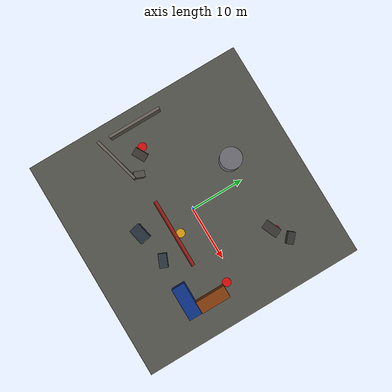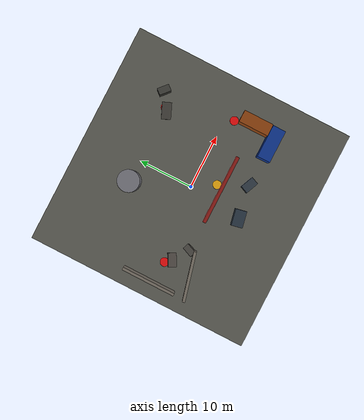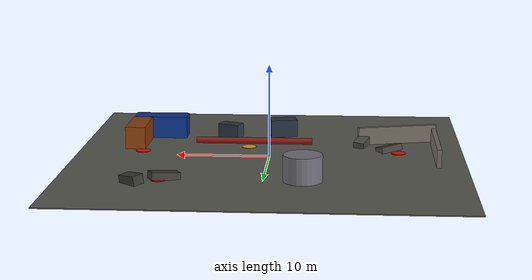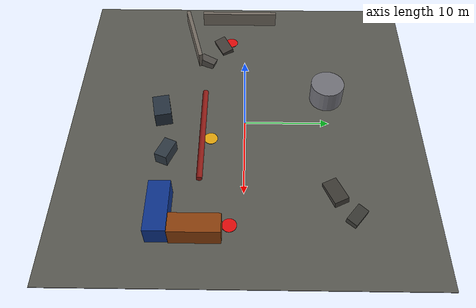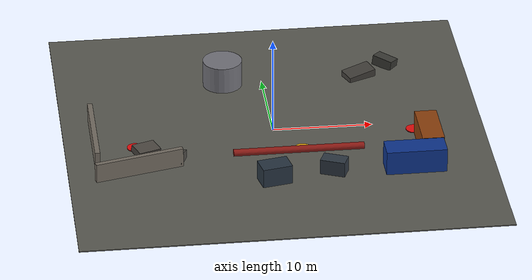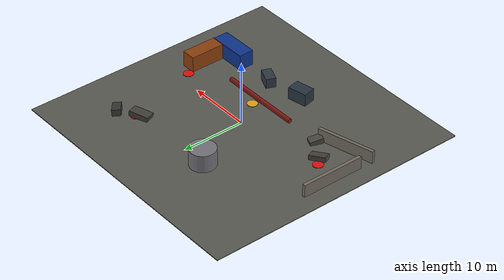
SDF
<?xml version="1.0" ?>
<sdf version="1.9">
  <world name="disaster_industrial">

    <physics name="1ms" type="ignored">
      <max_step_size>0.001</max_step_size>
      <real_time_factor>1.0</real_time_factor>
    </physics>

    <plugin
      filename="gz-sim-physics-system"
      name="gz::sim::systems::Physics"/>
    <plugin
      filename="gz-sim-user-commands-system"
      name="gz::sim::systems::UserCommands"/>
    <plugin
      filename="gz-sim-scene-broadcaster-system"
      name="gz::sim::systems::SceneBroadcaster"/>
    <plugin
      filename="gz-sim-air-pressure-system"
      name="gz::sim::systems::AirPressure"/>
    <plugin
      filename="gz-sim-magnetometer-system"
      name="gz::sim::systems::Magnetometer"/>
    <plugin
      filename="gz-sim-imu-system"
      name="gz::sim::systems::Imu"/>
    <plugin
      filename="gz-sim-navsat-system"
      name="gz::sim::systems::NavSat"/>

    <spherical_coordinates>
      <surface_model>EARTH_WGS84</surface_model>
      <world_frame_orientation>ENU</world_frame_orientation>
      <latitude_deg>47.397971</latitude_deg>
      <longitude_deg>8.546164</longitude_deg>
      <elevation>0</elevation>
      <heading_deg>0</heading_deg>
    </spherical_coordinates>

    <magnetic_field>
      5.5645e-6 22.8758e-6 -42.3884e-6
    </magnetic_field>

    <scene>
      <ambient>0.45 0.45 0.45 1</ambient>
      <background>0.65 0.70 0.75 1</background>
      <shadows>true</shadows>
    </scene>

    <light type="directional" name="sun">
      <cast_shadows>true</cast_shadows>
      <pose>0 0 20 0 0 0</pose>
      <diffuse>0.8 0.8 0.8 1</diffuse>
      <specular>0.2 0.2 0.2 1</specular>
      <attenuation>
        <range>1000</range>
        <constant>0.9</constant>
        <linear>0.01</linear>
        <quadratic>0.001</quadratic>
      </attenuation>
      <direction>-0.5 0.3 -1</direction>
    </light>

    <model name="ground">
      <static>true</static>
      <link name="ground_link">
        <collision name="collision">
          <geometry>
            <box>
              <size>42 42 0.1</size>
            </box>
          </geometry>
        </collision>
        <visual name="visual">
          <geometry>
            <box>
              <size>42 42 0.1</size>
            </box>
          </geometry>
          <material>
            <ambient>0.35 0.35 0.32 1</ambient>
            <diffuse>0.35 0.35 0.32 1</diffuse>
          </material>
        </visual>
      </link>
    </model>

    <!-- Sector A: collapsed warehouse -->
    <model name="collapsed_warehouse_wall_1">
      <static>true</static>
      <pose>-14 -7 1.0 0 0 0.25</pose>
      <link name="link">
        <collision name="collision"><geometry><box><size>9 0.5 2.0</size></box></geometry></collision>
        <visual name="visual"><geometry><box><size>9 0.5 2.0</size></box></geometry><material><ambient>0.45 0.42 0.38 1</ambient><diffuse>0.45 0.42 0.38 1</diffuse></material></visual>
      </link>
    </model>

    <model name="collapsed_warehouse_wall_2">
      <static>true</static>
      <pose>-18 -1 1.0 0 0 1.57</pose>
      <link name="link">
        <collision name="collision"><geometry><box><size>10 0.5 2.0</size></box></geometry></collision>
        <visual name="visual"><geometry><box><size>10 0.5 2.0</size></box></geometry><material><ambient>0.45 0.42 0.38 1</ambient><diffuse>0.45 0.42 0.38 1</diffuse></material></visual>
      </link>
    </model>

    <model name="rubble_A_1">
      <static>true</static>
      <pose>-13 -3 0.35 0.2 0.1 0.5</pose>
      <link name="link">
        <collision name="collision"><geometry><box><size>2.5 1.5 0.7</size></box></geometry></collision>
        <visual name="visual"><geometry><box><size>2.5 1.5 0.7</size></box></geometry><material><ambient>0.28 0.26 0.24 1</ambient><diffuse>0.28 0.26 0.24 1</diffuse></material></visual>
      </link>
    </model>

    <model name="rubble_A_2">
      <static>true</static>
      <pose>-10 -5 0.45 -0.1 0.2 1.2</pose>
      <link name="link">
        <collision name="collision"><geometry><box><size>2.0 1.2 0.9</size></box></geometry></collision>
        <visual name="visual"><geometry><box><size>2.0 1.2 0.9</size></box></geometry><material><ambient>0.30 0.29 0.27 1</ambient><diffuse>0.30 0.29 0.27 1</diffuse></material></visual>
      </link>
    </model>

    <!-- Sector B: pipeline and machinery -->
    <model name="pipeline_main">
      <static>true</static>
      <pose>2 -5 0.55 0 1.5708 0</pose>
      <link name="link">
        <collision name="collision"><geometry><cylinder><radius>0.35</radius><length>13</length></cylinder></geometry></collision>
        <visual name="visual"><geometry><cylinder><radius>0.35</radius><length>13</length></cylinder></geometry><material><ambient>0.55 0.10 0.08 1</ambient><diffuse>0.55 0.10 0.08 1</diffuse></material></visual>
      </link>
    </model>

    <model name="machinery_block_1">
      <static>true</static>
      <pose>-1 -10 1.0 0 0 0.2</pose>
      <link name="link">
        <collision name="collision"><geometry><box><size>3.0 2.0 2.0</size></box></geometry></collision>
        <visual name="visual"><geometry><box><size>3.0 2.0 2.0</size></box></geometry><material><ambient>0.15 0.20 0.25 1</ambient><diffuse>0.15 0.20 0.25 1</diffuse></material></visual>
      </link>
    </model>

    <model name="machinery_block_2">
      <static>true</static>
      <pose>5 -9 0.8 0 0 -0.4</pose>
      <link name="link">
        <collision name="collision"><geometry><box><size>2.5 1.5 1.6</size></box></geometry></collision>
        <visual name="visual"><geometry><box><size>2.5 1.5 1.6</size></box></geometry><material><ambient>0.18 0.22 0.26 1</ambient><diffuse>0.18 0.22 0.26 1</diffuse></material></visual>
      </link>
    </model>

    <!-- Sector C: containers -->
    <model name="container_C_1">
      <static>true</static>
      <pose>13 -9 1.25 0 0 0</pose>
      <link name="link">
        <collision name="collision"><geometry><box><size>6.0 2.4 2.5</size></box></geometry></collision>
        <visual name="visual"><geometry><box><size>6.0 2.4 2.5</size></box></geometry><material><ambient>0.05 0.20 0.55 1</ambient><diffuse>0.05 0.20 0.55 1</diffuse></material></visual>
      </link>
    </model>

    <model name="container_C_2">
      <static>true</static>
      <pose>15 -5 1.25 0 0 1.57</pose>
      <link name="link">
        <collision name="collision"><geometry><box><size>5.5 2.2 2.5</size></box></geometry></collision>
        <visual name="visual"><geometry><box><size>5.5 2.2 2.5</size></box></geometry><material><ambient>0.55 0.25 0.05 1</ambient><diffuse>0.55 0.25 0.05 1</diffuse></material></visual>
      </link>
    </model>

    <!-- North area: tanks and rubble -->
    <model name="storage_tank_D">
      <static>true</static>
      <pose>-4 10 1.4 0 0 0</pose>
      <link name="link">
        <collision name="collision"><geometry><cylinder><radius>2.0</radius><length>2.8</length></cylinder></geometry></collision>
        <visual name="visual"><geometry><cylinder><radius>2.0</radius><length>2.8</length></cylinder></geometry><material><ambient>0.45 0.45 0.48 1</ambient><diffuse>0.45 0.45 0.48 1</diffuse></material></visual>
      </link>
    </model>

    <model name="rubble_field_E_1">
      <static>true</static>
      <pose>10 10 0.4 0.1 -0.1 0.4</pose>
      <link name="link">
        <collision name="collision"><geometry><box><size>3.0 1.7 0.8</size></box></geometry></collision>
        <visual name="visual"><geometry><box><size>3.0 1.7 0.8</size></box></geometry><material><ambient>0.25 0.24 0.22 1</ambient><diffuse>0.25 0.24 0.22 1</diffuse></material></visual>
      </link>
    </model>

    <model name="rubble_field_E_2">
      <static>true</static>
      <pose>13 12 0.5 -0.1 0.1 -0.7</pose>
      <link name="link">
        <collision name="collision"><geometry><box><size>2.2 1.3 1.0</size></box></geometry></collision>
        <visual name="visual"><geometry><box><size>2.2 1.3 1.0</size></box></geometry><material><ambient>0.22 0.22 0.20 1</ambient><diffuse>0.22 0.22 0.20 1</diffuse></material></visual>
      </link>
    </model>

    <!-- Visual target markers; these are not sensors, only visual ground truth -->
    <model name="target_1_victim_A">
      <static>true</static>
      <pose>-14 -2 0.08 0 0 0</pose>
      <link name="link">
        <visual name="visual"><geometry><cylinder><radius>0.8</radius><length>0.08</length></cylinder></geometry><material><ambient>0.9 0.05 0.05 1</ambient><diffuse>0.9 0.05 0.05 1</diffuse></material></visual>
      </link>
    </model>

    <model name="target_2_pipeline_B">
      <static>true</static>
      <pose>2.5 -4 0.08 0 0 0</pose>
      <link name="link">
        <visual name="visual"><geometry><cylinder><radius>0.8</radius><length>0.08</length></cylinder></geometry><material><ambient>0.9 0.65 0.05 1</ambient><diffuse>0.9 0.65 0.05 1</diffuse></material></visual>
      </link>
    </model>

    <model name="target_3_victim_C">
      <static>true</static>
      <pose>14 -1.5 0.08 0 0 0</pose>
      <link name="link">
        <visual name="visual"><geometry><cylinder><radius>0.8</radius><length>0.08</length></cylinder></geometry><material><ambient>0.9 0.05 0.05 1</ambient><diffuse>0.9 0.05 0.05 1</diffuse></material></visual>
      </link>
    </model>

    <model name="target_4_tank_D">
      <static>true</static>
      <pose>-4 10 0.08 0 0 0</pose>
      <link name="link">
        <visual name="visual"><geometry><cylinder><radius>0.8</radius><length>0.08</length></cylinder></geometry><material><ambient>0.9 0.65 0.05 1</ambient><diffuse>0.9 0.65 0.05 1</diffuse></material></visual>
      </link>
    </model>

    <model name="target_5_victim_E">
      <static>true</static>
      <pose>10.5 10.5 0.08 0 0 0</pose>
      <link name="link">
        <visual name="visual"><geometry><cylinder><radius>0.8</radius><length>0.08</length></cylinder></geometry><material><ambient>0.9 0.05 0.05 1</ambient><diffuse>0.9 0.05 0.05 1</diffuse></material></visual>
      </link>
    </model>

  </world>
</sdf>
